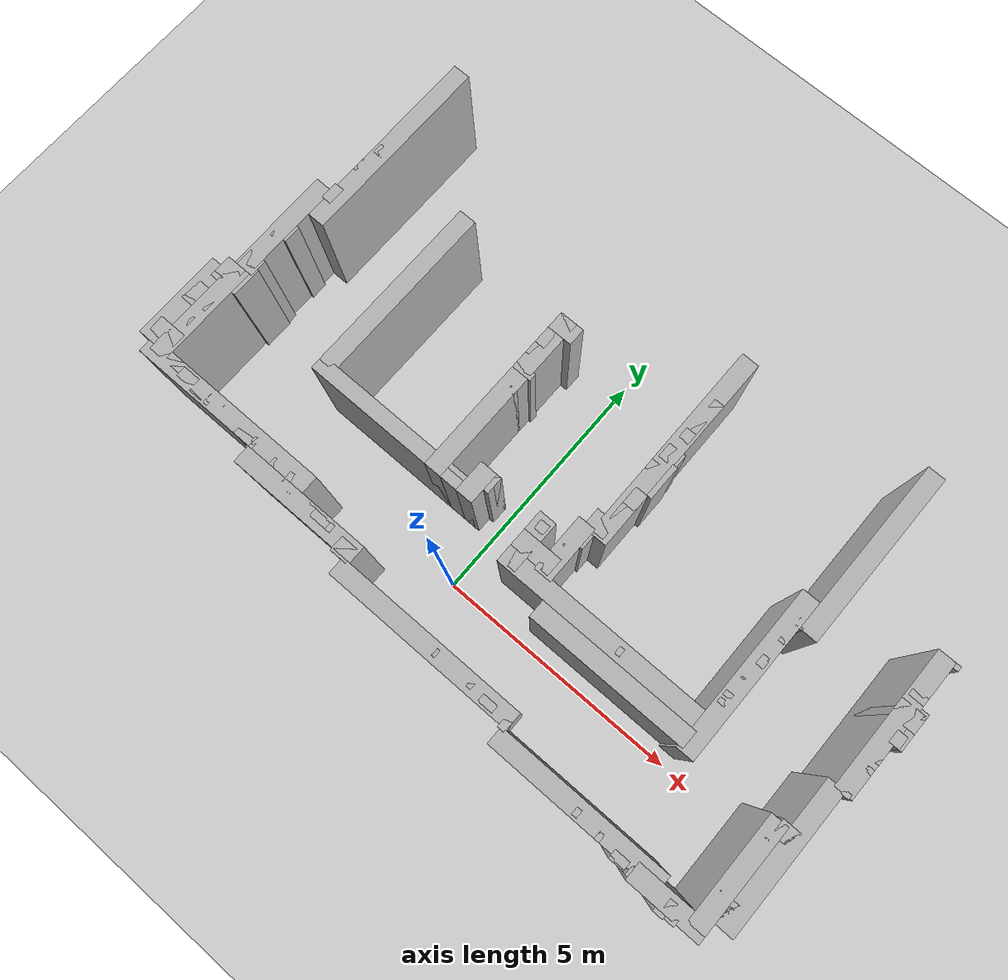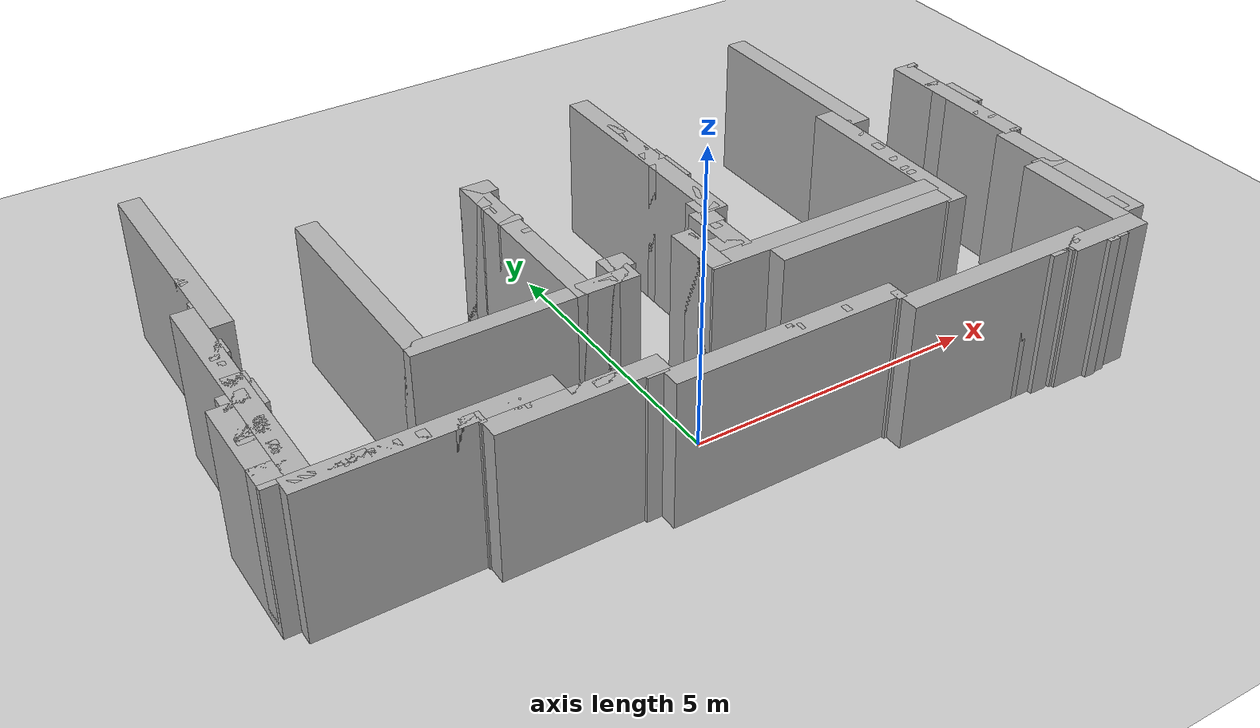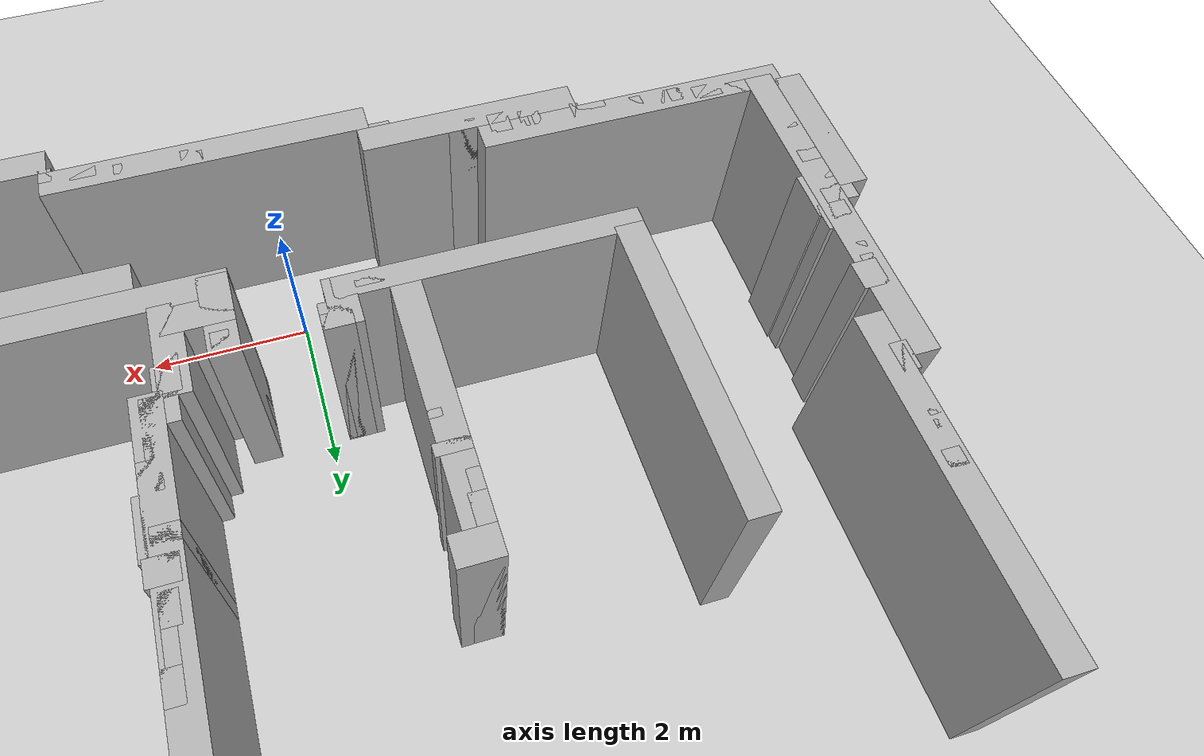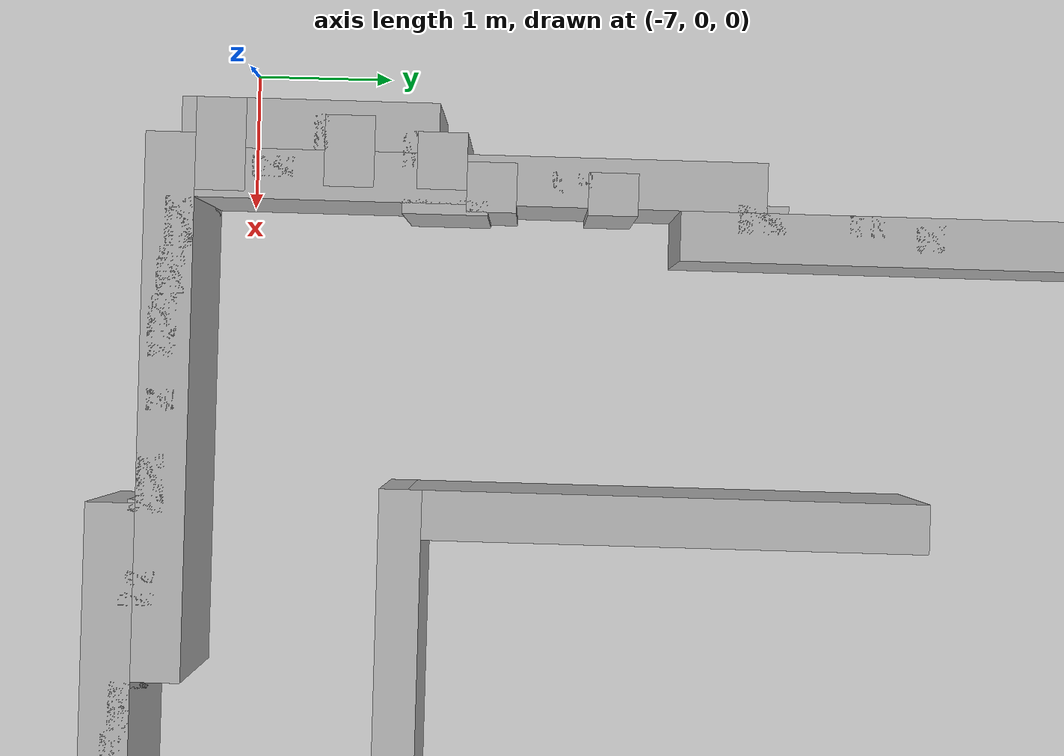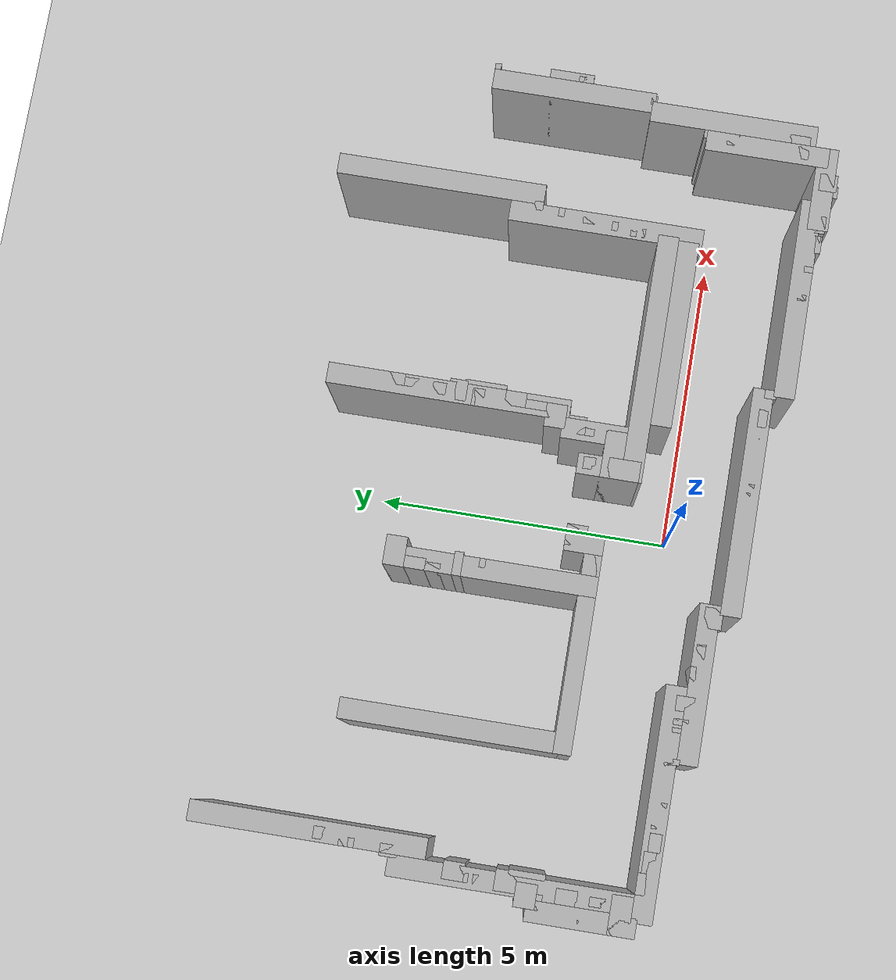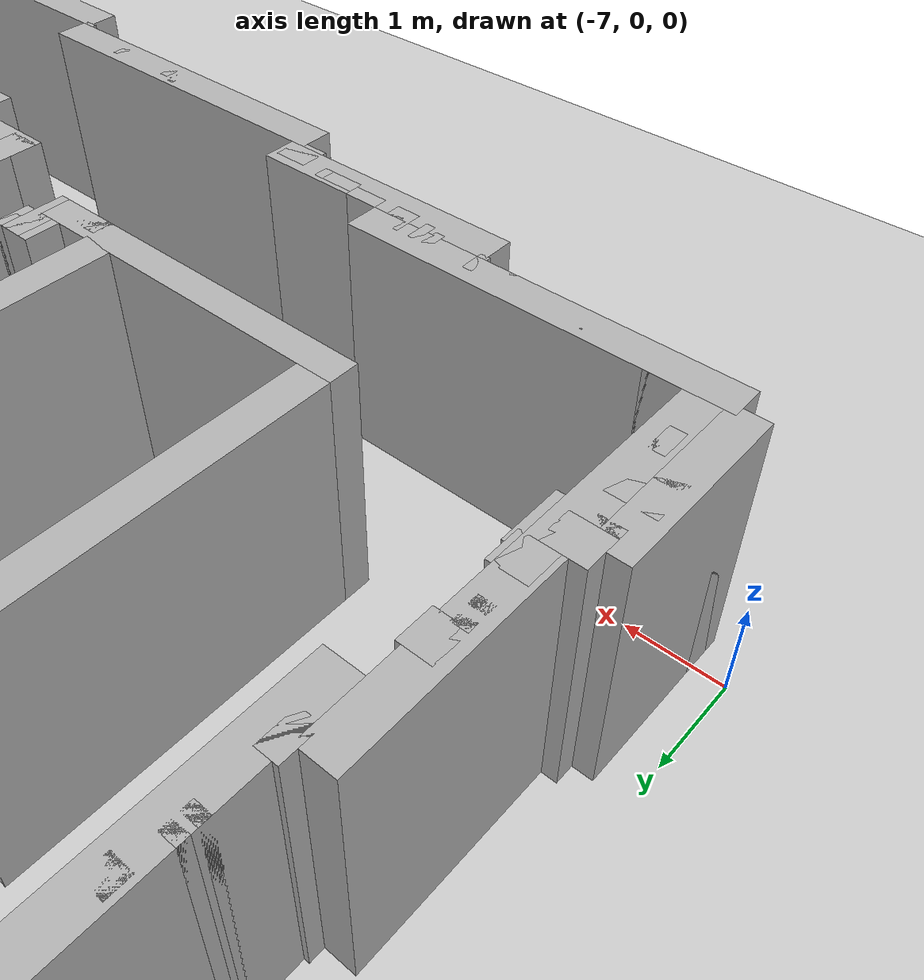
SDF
<sdf version="1.9">
 <world name="real_map_big_fix">
  <model name="ground_plane">
   <static>true</static>
   <link name="link">
    <collision name="collision">
     <geometry><plane><normal>0 0 1</normal><size>100 100</size></plane></geometry>
    </collision>
    <visual name="visual">
     <geometry><plane><normal>0 0 1</normal><size>100 100</size></plane></geometry>
     <material><ambient>0.8 0.8 0.8 1</ambient><diffuse>0.8 0.8 0.8 1</diffuse></material>
    </visual>
   </link>
  </model>
  <model name="wall_h_315">
   <static>true</static>
   <pose>1.7270 4.9620 1.2500 0 0 0</pose>
   <link name="link">
    <collision name="collision"><geometry><box><size>0.2000 0.3500 2.5000</size></box></geometry></collision>
    <visual name="visual">
     <geometry><box><size>0.2000 0.3500 2.5000</size></box></geometry>
     <material><ambient>0.7 0.7 0.7 1</ambient><diffuse>0.7 0.7 0.7 1</diffuse></material>
    </visual>
   </link>
  </model>
  <model name="wall_h_317">
   <static>true</static>
   <pose>-5.8230 4.8870 1.2500 0 0 0</pose>
   <link name="link">
    <collision name="collision"><geometry><box><size>0.2000 0.2000 2.5000</size></box></geometry></collision>
    <visual name="visual">
     <geometry><box><size>0.2000 0.2000 2.5000</size></box></geometry>
     <material><ambient>0.7 0.7 0.7 1</ambient><diffuse>0.7 0.7 0.7 1</diffuse></material>
    </visual>
   </link>
  </model>
  <model name="wall_h_318">
   <static>true</static>
   <pose>1.7020 4.6120 1.2500 0 0 0</pose>
   <link name="link">
    <collision name="collision"><geometry><box><size>0.1500 0.3500 2.5000</size></box></geometry></collision>
    <visual name="visual">
     <geometry><box><size>0.1500 0.3500 2.5000</size></box></geometry>
     <material><ambient>0.7 0.7 0.7 1</ambient><diffuse>0.7 0.7 0.7 1</diffuse></material>
    </visual>
   </link>
  </model>
  <model name="wall_h_319">
   <static>true</static>
   <pose>-1.1230 4.4620 1.2500 0 0 0</pose>
   <link name="link">
    <collision name="collision"><geometry><box><size>0.5000 0.3500 2.5000</size></box></geometry></collision>
    <visual name="visual">
     <geometry><box><size>0.5000 0.3500 2.5000</size></box></geometry>
     <material><ambient>0.7 0.7 0.7 1</ambient><diffuse>0.7 0.7 0.7 1</diffuse></material>
    </visual>
   </link>
  </model>
  <model name="wall_h_320">
   <static>true</static>
   <pose>-5.8980 4.5120 1.2500 0 0 0</pose>
   <link name="link">
    <collision name="collision"><geometry><box><size>0.1500 0.1000 2.5000</size></box></geometry></collision>
    <visual name="visual">
     <geometry><box><size>0.1500 0.1000 2.5000</size></box></geometry>
     <material><ambient>0.7 0.7 0.7 1</ambient><diffuse>0.7 0.7 0.7 1</diffuse></material>
    </visual>
   </link>
  </model>
  <model name="wall_h_321">
   <static>true</static>
   <pose>1.6770 4.2620 1.2500 0 0 0</pose>
   <link name="link">
    <collision name="collision"><geometry><box><size>0.2000 0.3500 2.5000</size></box></geometry></collision>
    <visual name="visual">
     <geometry><box><size>0.2000 0.3500 2.5000</size></box></geometry>
     <material><ambient>0.7 0.7 0.7 1</ambient><diffuse>0.7 0.7 0.7 1</diffuse></material>
    </visual>
   </link>
  </model>
  <model name="wall_h_322">
   <static>true</static>
   <pose>-5.8980 4.3620 1.2500 0 0 0</pose>
   <link name="link">
    <collision name="collision"><geometry><box><size>0.1500 0.1000 2.5000</size></box></geometry></collision>
    <visual name="visual">
     <geometry><box><size>0.1500 0.1000 2.5000</size></box></geometry>
     <material><ambient>0.7 0.7 0.7 1</ambient><diffuse>0.7 0.7 0.7 1</diffuse></material>
    </visual>
   </link>
  </model>
  <model name="wall_h_323">
   <static>true</static>
   <pose>-1.2730 4.1120 1.2500 0 0 0</pose>
   <link name="link">
    <collision name="collision"><geometry><box><size>0.2000 0.3500 2.5000</size></box></geometry></collision>
    <visual name="visual">
     <geometry><box><size>0.2000 0.3500 2.5000</size></box></geometry>
     <material><ambient>0.7 0.7 0.7 1</ambient><diffuse>0.7 0.7 0.7 1</diffuse></material>
    </visual>
   </link>
  </model>
  <model name="wall_h_324">
   <static>true</static>
   <pose>7.3270 4.1370 1.2500 0 0 0</pose>
   <link name="link">
    <collision name="collision"><geometry><box><size>0.2000 0.1000 2.5000</size></box></geometry></collision>
    <visual name="visual">
     <geometry><box><size>0.2000 0.1000 2.5000</size></box></geometry>
     <material><ambient>0.7 0.7 0.7 1</ambient><diffuse>0.7 0.7 0.7 1</diffuse></material>
    </visual>
   </link>
  </model>
  <model name="wall_h_325">
   <static>true</static>
   <pose>1.7020 3.8870 1.2500 0 0 0</pose>
   <link name="link">
    <collision name="collision"><geometry><box><size>0.3500 0.3000 2.5000</size></box></geometry></collision>
    <visual name="visual">
     <geometry><box><size>0.3500 0.3000 2.5000</size></box></geometry>
     <material><ambient>0.7 0.7 0.7 1</ambient><diffuse>0.7 0.7 0.7 1</diffuse></material>
    </visual>
   </link>
  </model>
  <model name="wall_h_326">
   <static>true</static>
   <pose>-1.2980 3.8120 1.2500 0 0 0</pose>
   <link name="link">
    <collision name="collision"><geometry><box><size>0.1500 0.2500 2.5000</size></box></geometry></collision>
    <visual name="visual">
     <geometry><box><size>0.1500 0.2500 2.5000</size></box></geometry>
     <material><ambient>0.7 0.7 0.7 1</ambient><diffuse>0.7 0.7 0.7 1</diffuse></material>
    </visual>
   </link>
  </model>
  <model name="wall_h_327">
   <static>true</static>
   <pose>-5.9230 3.7120 1.2500 0 0 0</pose>
   <link name="link">
    <collision name="collision"><geometry><box><size>0.2000 0.3500 2.5000</size></box></geometry></collision>
    <visual name="visual">
     <geometry><box><size>0.2000 0.3500 2.5000</size></box></geometry>
     <material><ambient>0.7 0.7 0.7 1</ambient><diffuse>0.7 0.7 0.7 1</diffuse></material>
    </visual>
   </link>
  </model>
  <model name="wall_h_328">
   <static>true</static>
   <pose>1.6270 3.5370 1.2500 0 0 0</pose>
   <link name="link">
    <collision name="collision"><geometry><box><size>0.3000 0.2000 2.5000</size></box></geometry></collision>
    <visual name="visual">
     <geometry><box><size>0.3000 0.2000 2.5000</size></box></geometry>
     <material><ambient>0.7 0.7 0.7 1</ambient><diffuse>0.7 0.7 0.7 1</diffuse></material>
    </visual>
   </link>
  </model>
  <model name="wall_h_329">
   <static>true</static>
   <pose>-1.1730 3.4120 1.2500 0 0 0</pose>
   <link name="link">
    <collision name="collision"><geometry><box><size>0.4000 0.1500 2.5000</size></box></geometry></collision>
    <visual name="visual">
     <geometry><box><size>0.4000 0.1500 2.5000</size></box></geometry>
     <material><ambient>0.7 0.7 0.7 1</ambient><diffuse>0.7 0.7 0.7 1</diffuse></material>
    </visual>
   </link>
  </model>
  <model name="wall_h_330">
   <static>true</static>
   <pose>7.1770 3.3620 1.2500 0 0 0</pose>
   <link name="link">
    <collision name="collision"><geometry><box><size>0.3000 0.1500 2.5000</size></box></geometry></collision>
    <visual name="visual">
     <geometry><box><size>0.3000 0.1500 2.5000</size></box></geometry>
     <material><ambient>0.7 0.7 0.7 1</ambient><diffuse>0.7 0.7 0.7 1</diffuse></material>
    </visual>
   </link>
  </model>
  <model name="wall_h_331">
   <static>true</static>
   <pose>7.2270 3.0120 1.2500 0 0 0</pose>
   <link name="link">
    <collision name="collision"><geometry><box><size>0.5000 0.3500 2.5000</size></box></geometry></collision>
    <visual name="visual">
     <geometry><box><size>0.5000 0.3500 2.5000</size></box></geometry>
     <material><ambient>0.7 0.7 0.7 1</ambient><diffuse>0.7 0.7 0.7 1</diffuse></material>
    </visual>
   </link>
  </model>
  <model name="wall_h_332">
   <static>true</static>
   <pose>5.0520 3.0620 1.2500 0 0 0</pose>
   <link name="link">
    <collision name="collision"><geometry><box><size>0.1500 0.1500 2.5000</size></box></geometry></collision>
    <visual name="visual">
     <geometry><box><size>0.1500 0.1500 2.5000</size></box></geometry>
     <material><ambient>0.7 0.7 0.7 1</ambient><diffuse>0.7 0.7 0.7 1</diffuse></material>
    </visual>
   </link>
  </model>
  <model name="wall_h_333">
   <static>true</static>
   <pose>1.7020 2.9120 1.2500 0 0 0</pose>
   <link name="link">
    <collision name="collision"><geometry><box><size>0.2500 0.3500 2.5000</size></box></geometry></collision>
    <visual name="visual">
     <geometry><box><size>0.2500 0.3500 2.5000</size></box></geometry>
     <material><ambient>0.7 0.7 0.7 1</ambient><diffuse>0.7 0.7 0.7 1</diffuse></material>
    </visual>
   </link>
  </model>
  <model name="wall_h_334">
   <static>true</static>
   <pose>-1.0980 3.0120 1.2500 0 0 0</pose>
   <link name="link">
    <collision name="collision"><geometry><box><size>0.1500 0.1000 2.5000</size></box></geometry></collision>
    <visual name="visual">
     <geometry><box><size>0.1500 0.1000 2.5000</size></box></geometry>
     <material><ambient>0.7 0.7 0.7 1</ambient><diffuse>0.7 0.7 0.7 1</diffuse></material>
    </visual>
   </link>
  </model>
  <model name="wall_h_335">
   <static>true</static>
   <pose>-6.0730 2.6620 1.2500 0 0 0</pose>
   <link name="link">
    <collision name="collision"><geometry><box><size>0.3000 0.3500 2.5000</size></box></geometry></collision>
    <visual name="visual">
     <geometry><box><size>0.3000 0.3500 2.5000</size></box></geometry>
     <material><ambient>0.7 0.7 0.7 1</ambient><diffuse>0.7 0.7 0.7 1</diffuse></material>
    </visual>
   </link>
  </model>
  <model name="wall_h_336">
   <static>true</static>
   <pose>1.6520 2.5620 1.2500 0 0 0</pose>
   <link name="link">
    <collision name="collision"><geometry><box><size>0.1500 0.3500 2.5000</size></box></geometry></collision>
    <visual name="visual">
     <geometry><box><size>0.1500 0.3500 2.5000</size></box></geometry>
     <material><ambient>0.7 0.7 0.7 1</ambient><diffuse>0.7 0.7 0.7 1</diffuse></material>
    </visual>
   </link>
  </model>
  <model name="wall_h_337">
   <static>true</static>
   <pose>7.3270 2.6120 1.2500 0 0 0</pose>
   <link name="link">
    <collision name="collision"><geometry><box><size>0.2000 0.2500 2.5000</size></box></geometry></collision>
    <visual name="visual">
     <geometry><box><size>0.2000 0.2500 2.5000</size></box></geometry>
     <material><ambient>0.7 0.7 0.7 1</ambient><diffuse>0.7 0.7 0.7 1</diffuse></material>
    </visual>
   </link>
  </model>
  <model name="wall_h_338">
   <static>true</static>
   <pose>5.0020 2.6620 1.2500 0 0 0</pose>
   <link name="link">
    <collision name="collision"><geometry><box><size>0.1500 0.1000 2.5000</size></box></geometry></collision>
    <visual name="visual">
     <geometry><box><size>0.1500 0.1000 2.5000</size></box></geometry>
     <material><ambient>0.7 0.7 0.7 1</ambient><diffuse>0.7 0.7 0.7 1</diffuse></material>
    </visual>
   </link>
  </model>
  <model name="wall_h_339">
   <static>true</static>
   <pose>-6.1480 2.4620 1.2500 0 0 0</pose>
   <link name="link">
    <collision name="collision"><geometry><box><size>0.1500 0.1000 2.5000</size></box></geometry></collision>
    <visual name="visual">
     <geometry><box><size>0.1500 0.1000 2.5000</size></box></geometry>
     <material><ambient>0.7 0.7 0.7 1</ambient><diffuse>0.7 0.7 0.7 1</diffuse></material>
    </visual>
   </link>
  </model>
  <model name="wall_h_340">
   <static>true</static>
   <pose>1.5270 2.2120 1.2500 0 0 0</pose>
   <link name="link">
    <collision name="collision"><geometry><box><size>0.4000 0.3500 2.5000</size></box></geometry></collision>
    <visual name="visual">
     <geometry><box><size>0.4000 0.3500 2.5000</size></box></geometry>
     <material><ambient>0.7 0.7 0.7 1</ambient><diffuse>0.7 0.7 0.7 1</diffuse></material>
    </visual>
   </link>
  </model>
  <model name="wall_h_341">
   <static>true</static>
   <pose>-6.1480 2.2870 1.2500 0 0 0</pose>
   <link name="link">
    <collision name="collision"><geometry><box><size>0.1500 0.1000 2.5000</size></box></geometry></collision>
    <visual name="visual">
     <geometry><box><size>0.1500 0.1000 2.5000</size></box></geometry>
     <material><ambient>0.7 0.7 0.7 1</ambient><diffuse>0.7 0.7 0.7 1</diffuse></material>
    </visual>
   </link>
  </model>
  <model name="wall_h_342">
   <static>true</static>
   <pose>4.9520 2.1870 1.2500 0 0 0</pose>
   <link name="link">
    <collision name="collision"><geometry><box><size>0.1500 0.2000 2.5000</size></box></geometry></collision>
    <visual name="visual">
     <geometry><box><size>0.1500 0.2000 2.5000</size></box></geometry>
     <material><ambient>0.7 0.7 0.7 1</ambient><diffuse>0.7 0.7 0.7 1</diffuse></material>
    </visual>
   </link>
  </model>
  <model name="wall_h_343">
   <static>true</static>
   <pose>7.1770 2.1620 1.2500 0 0 0</pose>
   <link name="link">
    <collision name="collision"><geometry><box><size>0.3000 0.1500 2.5000</size></box></geometry></collision>
    <visual name="visual">
     <geometry><box><size>0.3000 0.1500 2.5000</size></box></geometry>
     <material><ambient>0.7 0.7 0.7 1</ambient><diffuse>0.7 0.7 0.7 1</diffuse></material>
    </visual>
   </link>
  </model>
  <model name="wall_h_344">
   <static>true</static>
   <pose>1.4270 1.8620 1.2500 0 0 0</pose>
   <link name="link">
    <collision name="collision"><geometry><box><size>0.3000 0.3500 2.5000</size></box></geometry></collision>
    <visual name="visual">
     <geometry><box><size>0.3000 0.3500 2.5000</size></box></geometry>
     <material><ambient>0.7 0.7 0.7 1</ambient><diffuse>0.7 0.7 0.7 1</diffuse></material>
    </visual>
   </link>
  </model>
  <model name="wall_h_345">
   <static>true</static>
   <pose>-6.0980 1.8120 1.2500 0 0 0</pose>
   <link name="link">
    <collision name="collision"><geometry><box><size>0.3500 0.3500 2.5000</size></box></geometry></collision>
    <visual name="visual">
     <geometry><box><size>0.3500 0.3500 2.5000</size></box></geometry>
     <material><ambient>0.7 0.7 0.7 1</ambient><diffuse>0.7 0.7 0.7 1</diffuse></material>
    </visual>
   </link>
  </model>
  <model name="wall_h_346">
   <static>true</static>
   <pose>7.2270 1.9370 1.2500 0 0 0</pose>
   <link name="link">
    <collision name="collision"><geometry><box><size>0.2000 0.1000 2.5000</size></box></geometry></collision>
    <visual name="visual">
     <geometry><box><size>0.2000 0.1000 2.5000</size></box></geometry>
     <material><ambient>0.7 0.7 0.7 1</ambient><diffuse>0.7 0.7 0.7 1</diffuse></material>
    </visual>
   </link>
  </model>
  <model name="wall_h_347">
   <static>true</static>
   <pose>4.9020 1.7370 1.2500 0 0 0</pose>
   <link name="link">
    <collision name="collision"><geometry><box><size>0.1500 0.1000 2.5000</size></box></geometry></collision>
    <visual name="visual">
     <geometry><box><size>0.1500 0.1000 2.5000</size></box></geometry>
     <material><ambient>0.7 0.7 0.7 1</ambient><diffuse>0.7 0.7 0.7 1</diffuse></material>
    </visual>
   </link>
  </model>
  <model name="wall_h_348">
   <static>true</static>
   <pose>-0.3980 1.5620 1.2500 0 0 0</pose>
   <link name="link">
    <collision name="collision"><geometry><box><size>0.3500 0.3500 2.5000</size></box></geometry></collision>
    <visual name="visual">
     <geometry><box><size>0.3500 0.3500 2.5000</size></box></geometry>
     <material><ambient>0.7 0.7 0.7 1</ambient><diffuse>0.7 0.7 0.7 1</diffuse></material>
    </visual>
   </link>
  </model>
  <model name="wall_h_349">
   <static>true</static>
   <pose>1.3520 1.6120 1.2500 0 0 0</pose>
   <link name="link">
    <collision name="collision"><geometry><box><size>0.1500 0.1500 2.5000</size></box></geometry></collision>
    <visual name="visual">
     <geometry><box><size>0.1500 0.1500 2.5000</size></box></geometry>
     <material><ambient>0.7 0.7 0.7 1</ambient><diffuse>0.7 0.7 0.7 1</diffuse></material>
    </visual>
   </link>
  </model>
  <model name="wall_h_350">
   <static>true</static>
   <pose>-6.2730 1.4620 1.2500 0 0 0</pose>
   <link name="link">
    <collision name="collision"><geometry><box><size>0.4000 0.3500 2.5000</size></box></geometry></collision>
    <visual name="visual">
     <geometry><box><size>0.4000 0.3500 2.5000</size></box></geometry>
     <material><ambient>0.7 0.7 0.7 1</ambient><diffuse>0.7 0.7 0.7 1</diffuse></material>
    </visual>
   </link>
  </model>
  <model name="wall_h_351">
   <static>true</static>
   <pose>0.8270 1.5370 1.2500 0 0 0</pose>
   <link name="link">
    <collision name="collision"><geometry><box><size>0.2000 0.2000 2.5000</size></box></geometry></collision>
    <visual name="visual">
     <geometry><box><size>0.2000 0.2000 2.5000</size></box></geometry>
     <material><ambient>0.7 0.7 0.7 1</ambient><diffuse>0.7 0.7 0.7 1</diffuse></material>
    </visual>
   </link>
  </model>
  <model name="wall_h_352">
   <static>true</static>
   <pose>4.8520 1.4120 1.2500 0 0 0</pose>
   <link name="link">
    <collision name="collision"><geometry><box><size>0.1500 0.1000 2.5000</size></box></geometry></collision>
    <visual name="visual">
     <geometry><box><size>0.1500 0.1000 2.5000</size></box></geometry>
     <material><ambient>0.7 0.7 0.7 1</ambient><diffuse>0.7 0.7 0.7 1</diffuse></material>
    </visual>
   </link>
  </model>
  <model name="wall_h_353">
   <static>true</static>
   <pose>7.2020 1.4120 1.2500 0 0 0</pose>
   <link name="link">
    <collision name="collision"><geometry><box><size>0.1500 0.1000 2.5000</size></box></geometry></collision>
    <visual name="visual">
     <geometry><box><size>0.1500 0.1000 2.5000</size></box></geometry>
     <material><ambient>0.7 0.7 0.7 1</ambient><diffuse>0.7 0.7 0.7 1</diffuse></material>
    </visual>
   </link>
  </model>
  <model name="wall_h_354">
   <static>true</static>
   <pose>-2.1980 1.2370 1.2500 0 0 0</pose>
   <link name="link">
    <collision name="collision"><geometry><box><size>3.5500 0.3000 2.5000</size></box></geometry></collision>
    <visual name="visual">
     <geometry><box><size>3.5500 0.3000 2.5000</size></box></geometry>
     <material><ambient>0.7 0.7 0.7 1</ambient><diffuse>0.7 0.7 0.7 1</diffuse></material>
    </visual>
   </link>
  </model>
  <model name="wall_h_355">
   <static>true</static>
   <pose>1.0270 1.1620 1.2500 0 0 0</pose>
   <link name="link">
    <collision name="collision"><geometry><box><size>0.8000 0.3500 2.5000</size></box></geometry></collision>
    <visual name="visual">
     <geometry><box><size>0.8000 0.3500 2.5000</size></box></geometry>
     <material><ambient>0.7 0.7 0.7 1</ambient><diffuse>0.7 0.7 0.7 1</diffuse></material>
    </visual>
   </link>
  </model>
  <model name="wall_h_356">
   <static>true</static>
   <pose>-6.3480 1.2370 1.2500 0 0 0</pose>
   <link name="link">
    <collision name="collision"><geometry><box><size>0.2500 0.1000 2.5000</size></box></geometry></collision>
    <visual name="visual">
     <geometry><box><size>0.2500 0.1000 2.5000</size></box></geometry>
     <material><ambient>0.7 0.7 0.7 1</ambient><diffuse>0.7 0.7 0.7 1</diffuse></material>
    </visual>
   </link>
  </model>
  <model name="wall_h_357">
   <static>true</static>
   <pose>4.8520 1.2620 1.2500 0 0 0</pose>
   <link name="link">
    <collision name="collision"><geometry><box><size>0.1500 0.1000 2.5000</size></box></geometry></collision>
    <visual name="visual">
     <geometry><box><size>0.1500 0.1000 2.5000</size></box></geometry>
     <material><ambient>0.7 0.7 0.7 1</ambient><diffuse>0.7 0.7 0.7 1</diffuse></material>
    </visual>
   </link>
  </model>
  <model name="wall_h_358">
   <static>true</static>
   <pose>-6.3230 0.8120 1.2500 0 0 0</pose>
   <link name="link">
    <collision name="collision"><geometry><box><size>0.5000 0.3500 2.5000</size></box></geometry></collision>
    <visual name="visual">
     <geometry><box><size>0.5000 0.3500 2.5000</size></box></geometry>
     <material><ambient>0.7 0.7 0.7 1</ambient><diffuse>0.7 0.7 0.7 1</diffuse></material>
    </visual>
   </link>
  </model>
  <model name="wall_h_359">
   <static>true</static>
   <pose>2.7520 0.8120 1.2500 0 0 0</pose>
   <link name="link">
    <collision name="collision"><geometry><box><size>4.2500 0.3500 2.5000</size></box></geometry></collision>
    <visual name="visual">
     <geometry><box><size>4.2500 0.3500 2.5000</size></box></geometry>
     <material><ambient>0.7 0.7 0.7 1</ambient><diffuse>0.7 0.7 0.7 1</diffuse></material>
    </visual>
   </link>
  </model>
  <model name="wall_h_360">
   <static>true</static>
   <pose>-6.4480 0.6120 1.2500 0 0 0</pose>
   <link name="link">
    <collision name="collision"><geometry><box><size>0.2500 0.1000 2.5000</size></box></geometry></collision>
    <visual name="visual">
     <geometry><box><size>0.2500 0.1000 2.5000</size></box></geometry>
     <material><ambient>0.7 0.7 0.7 1</ambient><diffuse>0.7 0.7 0.7 1</diffuse></material>
    </visual>
   </link>
  </model>
  <model name="wall_h_361">
   <static>true</static>
   <pose>3.2270 0.4620 1.2500 0 0 0</pose>
   <link name="link">
    <collision name="collision"><geometry><box><size>3.2000 0.3500 2.5000</size></box></geometry></collision>
    <visual name="visual">
     <geometry><box><size>3.2000 0.3500 2.5000</size></box></geometry>
     <material><ambient>0.7 0.7 0.7 1</ambient><diffuse>0.7 0.7 0.7 1</diffuse></material>
    </visual>
   </link>
  </model>
  <model name="wall_h_362">
   <static>true</static>
   <pose>6.9270 0.3370 1.2500 0 0 0</pose>
   <link name="link">
    <collision name="collision"><geometry><box><size>0.5000 0.3000 2.5000</size></box></geometry></collision>
    <visual name="visual">
     <geometry><box><size>0.5000 0.3000 2.5000</size></box></geometry>
     <material><ambient>0.7 0.7 0.7 1</ambient><diffuse>0.7 0.7 0.7 1</diffuse></material>
    </visual>
   </link>
  </model>
  <model name="wall_h_363">
   <static>true</static>
   <pose>-6.1980 0.2870 1.2500 0 0 0</pose>
   <link name="link">
    <collision name="collision"><geometry><box><size>0.1500 0.3000 2.5000</size></box></geometry></collision>
    <visual name="visual">
     <geometry><box><size>0.1500 0.3000 2.5000</size></box></geometry>
     <material><ambient>0.7 0.7 0.7 1</ambient><diffuse>0.7 0.7 0.7 1</diffuse></material>
    </visual>
   </link>
  </model>
  <model name="wall_h_364">
   <static>true</static>
   <pose>-6.3480 -0.0880 1.2500 0 0 0</pose>
   <link name="link">
    <collision name="collision"><geometry><box><size>0.6500 0.3500 2.5000</size></box></geometry></collision>
    <visual name="visual">
     <geometry><box><size>0.6500 0.3500 2.5000</size></box></geometry>
     <material><ambient>0.7 0.7 0.7 1</ambient><diffuse>0.7 0.7 0.7 1</diffuse></material>
    </visual>
   </link>
  </model>
  <model name="wall_h_365">
   <static>true</static>
   <pose>6.7270 -0.0130 1.2500 0 0 0</pose>
   <link name="link">
    <collision name="collision"><geometry><box><size>0.2000 0.2000 2.5000</size></box></geometry></collision>
    <visual name="visual">
     <geometry><box><size>0.2000 0.2000 2.5000</size></box></geometry>
     <material><ambient>0.7 0.7 0.7 1</ambient><diffuse>0.7 0.7 0.7 1</diffuse></material>
    </visual>
   </link>
  </model>
  <model name="wall_h_366">
   <static>true</static>
   <pose>-4.4980 -0.4380 1.2500 0 0 0</pose>
   <link name="link">
    <collision name="collision"><geometry><box><size>3.8500 0.3500 2.5000</size></box></geometry></collision>
    <visual name="visual">
     <geometry><box><size>3.8500 0.3500 2.5000</size></box></geometry>
     <material><ambient>0.7 0.7 0.7 1</ambient><diffuse>0.7 0.7 0.7 1</diffuse></material>
    </visual>
   </link>
  </model>
  <model name="wall_h_367">
   <static>true</static>
   <pose>-2.4980 -0.7880 1.2500 0 0 0</pose>
   <link name="link">
    <collision name="collision"><geometry><box><size>2.6500 0.3500 2.5000</size></box></geometry></collision>
    <visual name="visual">
     <geometry><box><size>2.6500 0.3500 2.5000</size></box></geometry>
     <material><ambient>0.7 0.7 0.7 1</ambient><diffuse>0.7 0.7 0.7 1</diffuse></material>
    </visual>
   </link>
  </model>
  <model name="wall_h_368">
   <static>true</static>
   <pose>0.6020 -1.1380 1.2500 0 0 0</pose>
   <link name="link">
    <collision name="collision"><geometry><box><size>3.8500 0.3500 2.5000</size></box></geometry></collision>
    <visual name="visual">
     <geometry><box><size>3.8500 0.3500 2.5000</size></box></geometry>
     <material><ambient>0.7 0.7 0.7 1</ambient><diffuse>0.7 0.7 0.7 1</diffuse></material>
    </visual>
   </link>
  </model>
  <model name="wall_h_369">
   <static>true</static>
   <pose>6.7770 -1.1380 1.2500 0 0 0</pose>
   <link name="link">
    <collision name="collision"><geometry><box><size>0.4000 0.3500 2.5000</size></box></geometry></collision>
    <visual name="visual">
     <geometry><box><size>0.4000 0.3500 2.5000</size></box></geometry>
     <material><ambient>0.7 0.7 0.7 1</ambient><diffuse>0.7 0.7 0.7 1</diffuse></material>
    </visual>
   </link>
  </model>
  <model name="wall_h_370">
   <static>true</static>
   <pose>4.1520 -1.4880 1.2500 0 0 0</pose>
   <link name="link">
    <collision name="collision"><geometry><box><size>3.4500 0.3500 2.5000</size></box></geometry></collision>
    <visual name="visual">
     <geometry><box><size>3.4500 0.3500 2.5000</size></box></geometry>
     <material><ambient>0.7 0.7 0.7 1</ambient><diffuse>0.7 0.7 0.7 1</diffuse></material>
    </visual>
   </link>
  </model>
  <model name="wall_h_371">
   <static>true</static>
   <pose>6.1020 -1.6380 1.2500 0 0 0</pose>
   <link name="link">
    <collision name="collision"><geometry><box><size>1.4500 0.3500 2.5000</size></box></geometry></collision>
    <visual name="visual">
     <geometry><box><size>1.4500 0.3500 2.5000</size></box></geometry>
     <material><ambient>0.7 0.7 0.7 1</ambient><diffuse>0.7 0.7 0.7 1</diffuse></material>
    </visual>
   </link>
  </model>
  <model name="wall_h_372">
   <static>true</static>
   <pose>5.1270 -1.6880 1.2500 0 0 0</pose>
   <link name="link">
    <collision name="collision"><geometry><box><size>0.3000 0.1000 2.5000</size></box></geometry></collision>
    <visual name="visual">
     <geometry><box><size>0.3000 0.1000 2.5000</size></box></geometry>
     <material><ambient>0.7 0.7 0.7 1</ambient><diffuse>0.7 0.7 0.7 1</diffuse></material>
    </visual>
   </link>
  </model>
  <model name="wall_h_373">
   <static>true</static>
   <pose>6.0770 -1.8380 1.2500 0 0 0</pose>
   <link name="link">
    <collision name="collision"><geometry><box><size>0.2000 0.1000 2.5000</size></box></geometry></collision>
    <visual name="visual">
     <geometry><box><size>0.2000 0.1000 2.5000</size></box></geometry>
     <material><ambient>0.7 0.7 0.7 1</ambient><diffuse>0.7 0.7 0.7 1</diffuse></material>
    </visual>
   </link>
  </model>
  <model name="wall_v_000">
   <static>true</static>
   <pose>-6.4980 0.5370 1.2500 0 0 0</pose>
   <link name="link">
    <collision name="collision"><geometry><box><size>0.3500 1.8000 2.5000</size></box></geometry></collision>
    <visual name="visual">
     <geometry><box><size>0.3500 1.8000 2.5000</size></box></geometry>
     <material><ambient>0.7 0.7 0.7 1</ambient><diffuse>0.7 0.7 0.7 1</diffuse></material>
    </visual>
   </link>
  </model>
  <model name="wall_v_001">
   <static>true</static>
   <pose>-6.1480 1.6370 1.2500 0 0 0</pose>
   <link name="link">
    <collision name="collision"><geometry><box><size>0.3500 4.2000 2.5000</size></box></geometry></collision>
    <visual name="visual">
     <geometry><box><size>0.3500 4.2000 2.5000</size></box></geometry>
     <material><ambient>0.7 0.7 0.7 1</ambient><diffuse>0.7 0.7 0.7 1</diffuse></material>
    </visual>
   </link>
  </model>
  <model name="wall_v_002">
   <static>true</static>
   <pose>-5.7980 5.0870 1.2500 0 0 0</pose>
   <link name="link">
    <collision name="collision"><geometry><box><size>0.3500 3.9000 2.5000</size></box></geometry></collision>
    <visual name="visual">
     <geometry><box><size>0.3500 3.9000 2.5000</size></box></geometry>
     <material><ambient>0.7 0.7 0.7 1</ambient><diffuse>0.7 0.7 0.7 1</diffuse></material>
    </visual>
   </link>
  </model>
  <model name="wall_v_003">
   <static>true</static>
   <pose>-5.9480 1.4870 1.2500 0 0 0</pose>
   <link name="link">
    <collision name="collision"><geometry><box><size>0.1000 0.6000 2.5000</size></box></geometry></collision>
    <visual name="visual">
     <geometry><box><size>0.1000 0.6000 2.5000</size></box></geometry>
     <material><ambient>0.7 0.7 0.7 1</ambient><diffuse>0.7 0.7 0.7 1</diffuse></material>
    </visual>
   </link>
  </model>
  <model name="wall_v_004">
   <static>true</static>
   <pose>-5.7980 -0.3630 1.2500 0 0 0</pose>
   <link name="link">
    <collision name="collision"><geometry><box><size>0.3500 0.2000 2.5000</size></box></geometry></collision>
    <visual name="visual">
     <geometry><box><size>0.3500 0.2000 2.5000</size></box></geometry>
     <material><ambient>0.7 0.7 0.7 1</ambient><diffuse>0.7 0.7 0.7 1</diffuse></material>
    </visual>
   </link>
  </model>
  <model name="wall_v_006">
   <static>true</static>
   <pose>-5.4480 -0.4130 1.2500 0 0 0</pose>
   <link name="link">
    <collision name="collision"><geometry><box><size>0.3500 0.2000 2.5000</size></box></geometry></collision>
    <visual name="visual">
     <geometry><box><size>0.3500 0.2000 2.5000</size></box></geometry>
     <material><ambient>0.7 0.7 0.7 1</ambient><diffuse>0.7 0.7 0.7 1</diffuse></material>
    </visual>
   </link>
  </model>
  <model name="wall_v_008">
   <static>true</static>
   <pose>-5.1230 -0.4630 1.2500 0 0 0</pose>
   <link name="link">
    <collision name="collision"><geometry><box><size>0.3000 0.2000 2.5000</size></box></geometry></collision>
    <visual name="visual">
     <geometry><box><size>0.3000 0.2000 2.5000</size></box></geometry>
     <material><ambient>0.7 0.7 0.7 1</ambient><diffuse>0.7 0.7 0.7 1</diffuse></material>
    </visual>
   </link>
  </model>
  <model name="wall_v_010">
   <static>true</static>
   <pose>-4.8980 -0.4630 1.2500 0 0 0</pose>
   <link name="link">
    <collision name="collision"><geometry><box><size>0.1000 0.2000 2.5000</size></box></geometry></collision>
    <visual name="visual">
     <geometry><box><size>0.1000 0.2000 2.5000</size></box></geometry>
     <material><ambient>0.7 0.7 0.7 1</ambient><diffuse>0.7 0.7 0.7 1</diffuse></material>
    </visual>
   </link>
  </model>
  <model name="wall_v_012">
   <static>true</static>
   <pose>-4.5480 -0.4630 1.2500 0 0 0</pose>
   <link name="link">
    <collision name="collision"><geometry><box><size>0.1500 0.2000 2.5000</size></box></geometry></collision>
    <visual name="visual">
     <geometry><box><size>0.1500 0.2000 2.5000</size></box></geometry>
     <material><ambient>0.7 0.7 0.7 1</ambient><diffuse>0.7 0.7 0.7 1</diffuse></material>
    </visual>
   </link>
  </model>
  <model name="wall_v_014">
   <static>true</static>
   <pose>-3.9980 -0.5130 1.2500 0 0 0</pose>
   <link name="link">
    <collision name="collision"><geometry><box><size>0.3500 0.2000 2.5000</size></box></geometry></collision>
    <visual name="visual">
     <geometry><box><size>0.3500 0.2000 2.5000</size></box></geometry>
     <material><ambient>0.7 0.7 0.7 1</ambient><diffuse>0.7 0.7 0.7 1</diffuse></material>
    </visual>
   </link>
  </model>
  <model name="wall_v_015">
   <static>true</static>
   <pose>-3.7980 3.1120 1.2500 0 0 0</pose>
   <link name="link">
    <collision name="collision"><geometry><box><size>0.3500 3.6500 2.5000</size></box></geometry></collision>
    <visual name="visual">
     <geometry><box><size>0.3500 3.6500 2.5000</size></box></geometry>
     <material><ambient>0.7 0.7 0.7 1</ambient><diffuse>0.7 0.7 0.7 1</diffuse></material>
    </visual>
   </link>
  </model>
  <model name="wall_v_017">
   <static>true</static>
   <pose>-3.7980 -0.5380 1.2500 0 0 0</pose>
   <link name="link">
    <collision name="collision"><geometry><box><size>0.1000 0.2500 2.5000</size></box></geometry></collision>
    <visual name="visual">
     <geometry><box><size>0.1000 0.2500 2.5000</size></box></geometry>
     <material><ambient>0.7 0.7 0.7 1</ambient><diffuse>0.7 0.7 0.7 1</diffuse></material>
    </visual>
   </link>
  </model>
  <model name="wall_v_020">
   <static>true</static>
   <pose>-3.2980 -0.5630 1.2500 0 0 0</pose>
   <link name="link">
    <collision name="collision"><geometry><box><size>0.1000 0.2000 2.5000</size></box></geometry></collision>
    <visual name="visual">
     <geometry><box><size>0.1000 0.2000 2.5000</size></box></geometry>
     <material><ambient>0.7 0.7 0.7 1</ambient><diffuse>0.7 0.7 0.7 1</diffuse></material>
    </visual>
   </link>
  </model>
  <model name="wall_v_022">
   <static>true</static>
   <pose>-3.1480 -0.5880 1.2500 0 0 0</pose>
   <link name="link">
    <collision name="collision"><geometry><box><size>0.1000 0.2500 2.5000</size></box></geometry></collision>
    <visual name="visual">
     <geometry><box><size>0.1000 0.2500 2.5000</size></box></geometry>
     <material><ambient>0.7 0.7 0.7 1</ambient><diffuse>0.7 0.7 0.7 1</diffuse></material>
    </visual>
   </link>
  </model>
  <model name="wall_v_024">
   <static>true</static>
   <pose>-2.8480 -0.6130 1.2500 0 0 0</pose>
   <link name="link">
    <collision name="collision"><geometry><box><size>0.2500 0.3000 2.5000</size></box></geometry></collision>
    <visual name="visual">
     <geometry><box><size>0.2500 0.3000 2.5000</size></box></geometry>
     <material><ambient>0.7 0.7 0.7 1</ambient><diffuse>0.7 0.7 0.7 1</diffuse></material>
    </visual>
   </link>
  </model>
  <model name="wall_v_027">
   <static>true</static>
   <pose>-2.3980 -0.6880 1.2500 0 0 0</pose>
   <link name="link">
    <collision name="collision"><geometry><box><size>0.3500 0.1500 2.5000</size></box></geometry></collision>
    <visual name="visual">
     <geometry><box><size>0.3500 0.1500 2.5000</size></box></geometry>
     <material><ambient>0.7 0.7 0.7 1</ambient><diffuse>0.7 0.7 0.7 1</diffuse></material>
    </visual>
   </link>
  </model>
  <model name="wall_v_030">
   <static>true</static>
   <pose>-2.0480 -0.7380 1.2500 0 0 0</pose>
   <link name="link">
    <collision name="collision"><geometry><box><size>0.3500 0.1500 2.5000</size></box></geometry></collision>
    <visual name="visual">
     <geometry><box><size>0.3500 0.1500 2.5000</size></box></geometry>
     <material><ambient>0.7 0.7 0.7 1</ambient><diffuse>0.7 0.7 0.7 1</diffuse></material>
    </visual>
   </link>
  </model>
  <model name="wall_v_032">
   <static>true</static>
   <pose>-1.8230 -0.7380 1.2500 0 0 0</pose>
   <link name="link">
    <collision name="collision"><geometry><box><size>0.1000 0.1500 2.5000</size></box></geometry></collision>
    <visual name="visual">
     <geometry><box><size>0.1000 0.1500 2.5000</size></box></geometry>
     <material><ambient>0.7 0.7 0.7 1</ambient><diffuse>0.7 0.7 0.7 1</diffuse></material>
    </visual>
   </link>
  </model>
  <model name="wall_v_033">
   <static>true</static>
   <pose>-1.3980 -0.8630 1.2500 0 0 0</pose>
   <link name="link">
    <collision name="collision"><geometry><box><size>0.3500 0.3000 2.5000</size></box></geometry></collision>
    <visual name="visual">
     <geometry><box><size>0.3500 0.3000 2.5000</size></box></geometry>
     <material><ambient>0.7 0.7 0.7 1</ambient><diffuse>0.7 0.7 0.7 1</diffuse></material>
    </visual>
   </link>
  </model>
  <model name="wall_v_035">
   <static>true</static>
   <pose>-1.1980 2.8620 1.2500 0 0 0</pose>
   <link name="link">
    <collision name="collision"><geometry><box><size>0.3500 3.5500 2.5000</size></box></geometry></collision>
    <visual name="visual">
     <geometry><box><size>0.3500 3.5500 2.5000</size></box></geometry>
     <material><ambient>0.7 0.7 0.7 1</ambient><diffuse>0.7 0.7 0.7 1</diffuse></material>
    </visual>
   </link>
  </model>
  <model name="wall_v_038">
   <static>true</static>
   <pose>-0.8480 1.1870 1.2500 0 0 0</pose>
   <link name="link">
    <collision name="collision"><geometry><box><size>0.3500 0.2000 2.5000</size></box></geometry></collision>
    <visual name="visual">
     <geometry><box><size>0.3500 0.2000 2.5000</size></box></geometry>
     <material><ambient>0.7 0.7 0.7 1</ambient><diffuse>0.7 0.7 0.7 1</diffuse></material>
    </visual>
   </link>
  </model>
  <model name="wall_v_044">
   <static>true</static>
   <pose>-0.4980 1.4120 1.2500 0 0 0</pose>
   <link name="link">
    <collision name="collision"><geometry><box><size>0.3500 0.6500 2.5000</size></box></geometry></collision>
    <visual name="visual">
     <geometry><box><size>0.3500 0.6500 2.5000</size></box></geometry>
     <material><ambient>0.7 0.7 0.7 1</ambient><diffuse>0.7 0.7 0.7 1</diffuse></material>
    </visual>
   </link>
  </model>
  <model name="wall_v_049">
   <static>true</static>
   <pose>-0.2730 1.6370 1.2500 0 0 0</pose>
   <link name="link">
    <collision name="collision"><geometry><box><size>0.1000 0.2000 2.5000</size></box></geometry></collision>
    <visual name="visual">
     <geometry><box><size>0.1000 0.2000 2.5000</size></box></geometry>
     <material><ambient>0.7 0.7 0.7 1</ambient><diffuse>0.7 0.7 0.7 1</diffuse></material>
    </visual>
   </link>
  </model>
  <model name="wall_v_059">
   <static>true</static>
   <pose>0.8020 1.2120 1.2500 0 0 0</pose>
   <link name="link">
    <collision name="collision"><geometry><box><size>0.3500 1.0500 2.5000</size></box></geometry></collision>
    <visual name="visual">
     <geometry><box><size>0.3500 1.0500 2.5000</size></box></geometry>
     <material><ambient>0.7 0.7 0.7 1</ambient><diffuse>0.7 0.7 0.7 1</diffuse></material>
    </visual>
   </link>
  </model>
  <model name="wall_v_061">
   <static>true</static>
   <pose>0.7020 -1.0880 1.2500 0 0 0</pose>
   <link name="link">
    <collision name="collision"><geometry><box><size>0.1000 0.1500 2.5000</size></box></geometry></collision>
    <visual name="visual">
     <geometry><box><size>0.1000 0.1500 2.5000</size></box></geometry>
     <material><ambient>0.7 0.7 0.7 1</ambient><diffuse>0.7 0.7 0.7 1</diffuse></material>
    </visual>
   </link>
  </model>
  <model name="wall_v_062">
   <static>true</static>
   <pose>0.8520 -1.1380 1.2500 0 0 0</pose>
   <link name="link">
    <collision name="collision"><geometry><box><size>0.1000 0.1500 2.5000</size></box></geometry></collision>
    <visual name="visual">
     <geometry><box><size>0.1000 0.1500 2.5000</size></box></geometry>
     <material><ambient>0.7 0.7 0.7 1</ambient><diffuse>0.7 0.7 0.7 1</diffuse></material>
    </visual>
   </link>
  </model>
  <model name="wall_v_068">
   <static>true</static>
   <pose>1.3520 1.5120 1.2500 0 0 0</pose>
   <link name="link">
    <collision name="collision"><geometry><box><size>0.3500 1.1500 2.5000</size></box></geometry></collision>
    <visual name="visual">
     <geometry><box><size>0.3500 1.1500 2.5000</size></box></geometry>
     <material><ambient>0.7 0.7 0.7 1</ambient><diffuse>0.7 0.7 0.7 1</diffuse></material>
    </visual>
   </link>
  </model>
  <model name="wall_v_071">
   <static>true</static>
   <pose>1.6520 4.0370 1.2500 0 0 0</pose>
   <link name="link">
    <collision name="collision"><geometry><box><size>0.3500 4.1000 2.5000</size></box></geometry></collision>
    <visual name="visual">
     <geometry><box><size>0.3500 4.1000 2.5000</size></box></geometry>
     <material><ambient>0.7 0.7 0.7 1</ambient><diffuse>0.7 0.7 0.7 1</diffuse></material>
    </visual>
   </link>
  </model>
  <model name="wall_v_074">
   <static>true</static>
   <pose>1.6270 -1.1380 1.2500 0 0 0</pose>
   <link name="link">
    <collision name="collision"><geometry><box><size>0.1000 0.1500 2.5000</size></box></geometry></collision>
    <visual name="visual">
     <geometry><box><size>0.1000 0.1500 2.5000</size></box></geometry>
     <material><ambient>0.7 0.7 0.7 1</ambient><diffuse>0.7 0.7 0.7 1</diffuse></material>
    </visual>
   </link>
  </model>
  <model name="wall_v_081">
   <static>true</static>
   <pose>1.8520 3.4370 1.2500 0 0 0</pose>
   <link name="link">
    <collision name="collision"><geometry><box><size>0.1000 0.7000 2.5000</size></box></geometry></collision>
    <visual name="visual">
     <geometry><box><size>0.1000 0.7000 2.5000</size></box></geometry>
     <material><ambient>0.7 0.7 0.7 1</ambient><diffuse>0.7 0.7 0.7 1</diffuse></material>
    </visual>
   </link>
  </model>
  <model name="wall_v_083">
   <static>true</static>
   <pose>2.0270 -1.1880 1.2500 0 0 0</pose>
   <link name="link">
    <collision name="collision"><geometry><box><size>0.3000 0.1500 2.5000</size></box></geometry></collision>
    <visual name="visual">
     <geometry><box><size>0.3000 0.1500 2.5000</size></box></geometry>
     <material><ambient>0.7 0.7 0.7 1</ambient><diffuse>0.7 0.7 0.7 1</diffuse></material>
    </visual>
   </link>
  </model>
  <model name="wall_v_093">
   <static>true</static>
   <pose>2.4520 -1.2630 1.2500 0 0 0</pose>
   <link name="link">
    <collision name="collision"><geometry><box><size>0.1500 0.2000 2.5000</size></box></geometry></collision>
    <visual name="visual">
     <geometry><box><size>0.1500 0.2000 2.5000</size></box></geometry>
     <material><ambient>0.7 0.7 0.7 1</ambient><diffuse>0.7 0.7 0.7 1</diffuse></material>
    </visual>
   </link>
  </model>
  <model name="wall_v_111">
   <static>true</static>
   <pose>3.1020 0.8120 1.2500 0 0 0</pose>
   <link name="link">
    <collision name="collision"><geometry><box><size>0.1000 0.1500 2.5000</size></box></geometry></collision>
    <visual name="visual">
     <geometry><box><size>0.1000 0.1500 2.5000</size></box></geometry>
     <material><ambient>0.7 0.7 0.7 1</ambient><diffuse>0.7 0.7 0.7 1</diffuse></material>
    </visual>
   </link>
  </model>
  <model name="wall_v_126">
   <static>true</static>
   <pose>4.1770 -1.5380 1.2500 0 0 0</pose>
   <link name="link">
    <collision name="collision"><geometry><box><size>0.1000 0.1500 2.5000</size></box></geometry></collision>
    <visual name="visual">
     <geometry><box><size>0.1000 0.1500 2.5000</size></box></geometry>
     <material><ambient>0.7 0.7 0.7 1</ambient><diffuse>0.7 0.7 0.7 1</diffuse></material>
    </visual>
   </link>
  </model>
  <model name="wall_v_131">
   <static>true</static>
   <pose>4.6770 -1.5880 1.2500 0 0 0</pose>
   <link name="link">
    <collision name="collision"><geometry><box><size>0.1000 0.1500 2.5000</size></box></geometry></collision>
    <visual name="visual">
     <geometry><box><size>0.1000 0.1500 2.5000</size></box></geometry>
     <material><ambient>0.7 0.7 0.7 1</ambient><diffuse>0.7 0.7 0.7 1</diffuse></material>
    </visual>
   </link>
  </model>
  <model name="wall_v_133">
   <static>true</static>
   <pose>4.9020 1.8870 1.2500 0 0 0</pose>
   <link name="link">
    <collision name="collision"><geometry><box><size>0.3500 3.3000 2.5000</size></box></geometry></collision>
    <visual name="visual">
     <geometry><box><size>0.3500 3.3000 2.5000</size></box></geometry>
     <material><ambient>0.7 0.7 0.7 1</ambient><diffuse>0.7 0.7 0.7 1</diffuse></material>
    </visual>
   </link>
  </model>
  <model name="wall_v_135">
   <static>true</static>
   <pose>5.1270 -1.6380 1.2500 0 0 0</pose>
   <link name="link">
    <collision name="collision"><geometry><box><size>0.3000 0.1500 2.5000</size></box></geometry></collision>
    <visual name="visual">
     <geometry><box><size>0.3000 0.1500 2.5000</size></box></geometry>
     <material><ambient>0.7 0.7 0.7 1</ambient><diffuse>0.7 0.7 0.7 1</diffuse></material>
    </visual>
   </link>
  </model>
  <model name="wall_v_138">
   <static>true</static>
   <pose>5.2520 4.7620 1.2500 0 0 0</pose>
   <link name="link">
    <collision name="collision"><geometry><box><size>0.3500 3.5500 2.5000</size></box></geometry></collision>
    <visual name="visual">
     <geometry><box><size>0.3500 3.5500 2.5000</size></box></geometry>
     <material><ambient>0.7 0.7 0.7 1</ambient><diffuse>0.7 0.7 0.7 1</diffuse></material>
    </visual>
   </link>
  </model>
  <model name="wall_v_144">
   <static>true</static>
   <pose>5.4770 -1.6630 1.2500 0 0 0</pose>
   <link name="link">
    <collision name="collision"><geometry><box><size>0.3000 0.2000 2.5000</size></box></geometry></collision>
    <visual name="visual">
     <geometry><box><size>0.3000 0.2000 2.5000</size></box></geometry>
     <material><ambient>0.7 0.7 0.7 1</ambient><diffuse>0.7 0.7 0.7 1</diffuse></material>
    </visual>
   </link>
  </model>
  <model name="wall_v_157">
   <static>true</static>
   <pose>6.2270 -1.7130 1.2500 0 0 0</pose>
   <link name="link">
    <collision name="collision"><geometry><box><size>0.3000 0.3000 2.5000</size></box></geometry></collision>
    <visual name="visual">
     <geometry><box><size>0.3000 0.3000 2.5000</size></box></geometry>
     <material><ambient>0.7 0.7 0.7 1</ambient><diffuse>0.7 0.7 0.7 1</diffuse></material>
    </visual>
   </link>
  </model>
  <model name="wall_v_163">
   <static>true</static>
   <pose>6.6520 -0.6130 1.2500 0 0 0</pose>
   <link name="link">
    <collision name="collision"><geometry><box><size>0.3500 2.1000 2.5000</size></box></geometry></collision>
    <visual name="visual">
     <geometry><box><size>0.3500 2.1000 2.5000</size></box></geometry>
     <material><ambient>0.7 0.7 0.7 1</ambient><diffuse>0.7 0.7 0.7 1</diffuse></material>
    </visual>
   </link>
  </model>
  <model name="wall_v_171">
   <static>true</static>
   <pose>7.0020 0.0120 1.2500 0 0 0</pose>
   <link name="link">
    <collision name="collision"><geometry><box><size>0.3500 2.8500 2.5000</size></box></geometry></collision>
    <visual name="visual">
     <geometry><box><size>0.3500 2.8500 2.5000</size></box></geometry>
     <material><ambient>0.7 0.7 0.7 1</ambient><diffuse>0.7 0.7 0.7 1</diffuse></material>
    </visual>
   </link>
  </model>
  <model name="wall_v_175">
   <static>true</static>
   <pose>7.1520 2.7870 1.2500 0 0 0</pose>
   <link name="link">
    <collision name="collision"><geometry><box><size>0.3500 2.8000 2.5000</size></box></geometry></collision>
    <visual name="visual">
     <geometry><box><size>0.3500 2.8000 2.5000</size></box></geometry>
     <material><ambient>0.7 0.7 0.7 1</ambient><diffuse>0.7 0.7 0.7 1</diffuse></material>
    </visual>
   </link>
  </model>
  <model name="wall_v_182">
   <static>true</static>
   <pose>7.4020 2.8620 1.2500 0 0 0</pose>
   <link name="link">
    <collision name="collision"><geometry><box><size>0.1500 0.7500 2.5000</size></box></geometry></collision>
    <visual name="visual">
     <geometry><box><size>0.1500 0.7500 2.5000</size></box></geometry>
     <material><ambient>0.7 0.7 0.7 1</ambient><diffuse>0.7 0.7 0.7 1</diffuse></material>
    </visual>
   </link>
  </model>
 </world>
</sdf>
